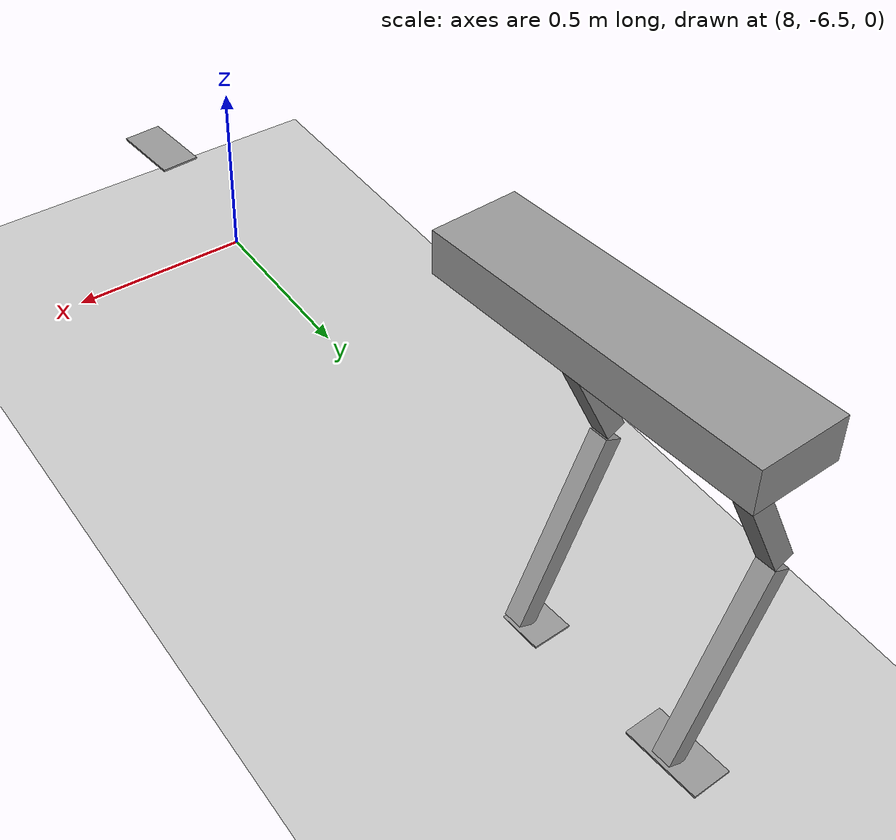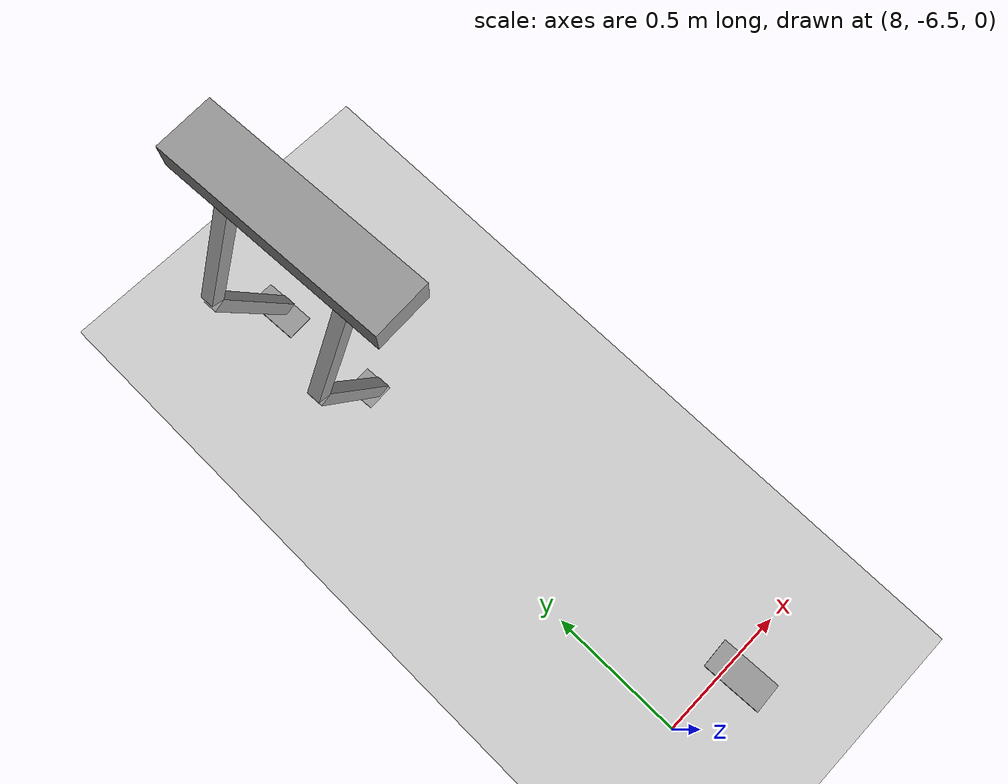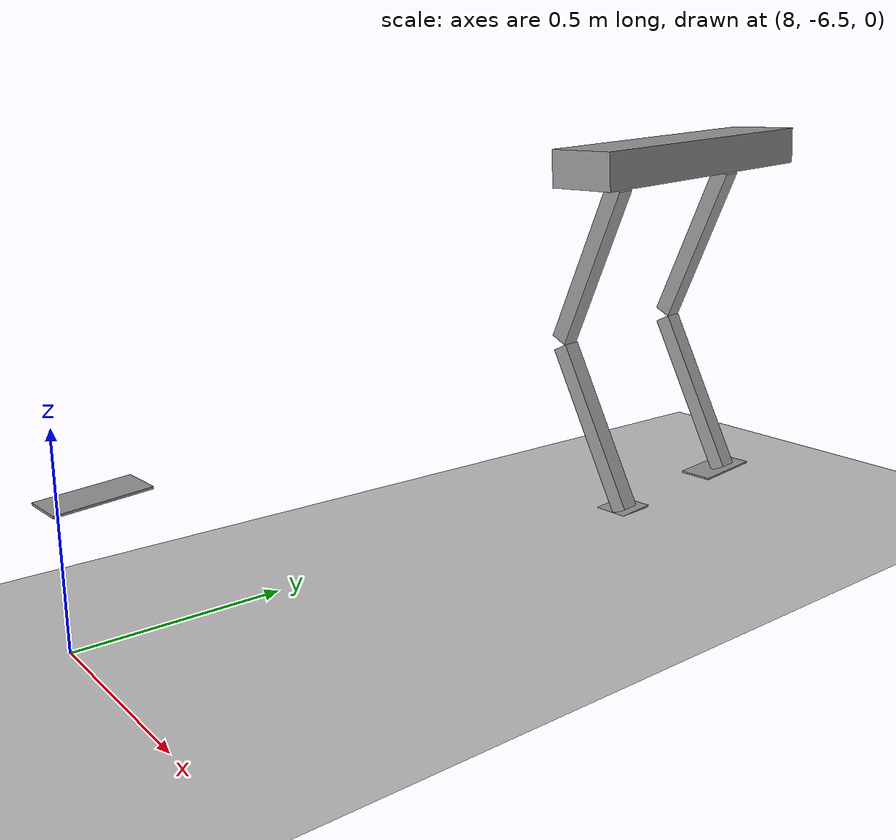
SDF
<sdf version="1.7">
 <world name="default">
  <model name="ground_plane">
   <static>1</static>
   <link name="link">
    <collision name="collision">
     <geometry><plane><normal>0 0 1</normal><size>100 100</size></plane></geometry>
     <surface>
      <contact><collide_bitmask>65535</collide_bitmask></contact>
      <friction><ode><mu>100</mu><mu2>50</mu2></ode></friction>
     </surface>
    </collision>
    <visual name="visual">
     <cast_shadows>0</cast_shadows>
     <geometry><plane><normal>0 0 1</normal><size>100 100</size></plane></geometry>
     <material>
      <script><uri>file://media/materials/scripts/gazebo.material</uri><name>Gazebo/Grey</name></script>
     </material>
    </visual>
   </link>
  </model>
  <model name="HumanoidRobot_clone_0">
   <link name="link_0">
    <inertial>
     <mass>1</mass>
     <inertia>
      <ixx>0.166667</ixx>
      <ixy>0</ixy>
      <ixz>0</ixz>
      <iyy>0.166667</iyy>
      <iyz>0</iyz>
      <izz>0.166667</izz>
     </inertia>
    </inertial>
    <pose>0.079366 0.216312 0.457777 0 -0 0</pose>
    <visual name="visual">
     <geometry><box><size>0.2 0.8 0.1</size></box></geometry>
     <material>
      <lighting>1</lighting>
      <script><uri>file://media/materials/scripts/gazebo.material</uri><name>Gazebo/Grey</name></script>
      <shader type="pixel"><normal_map>__default__</normal_map></shader>
      <ambient>0.3 0.3 0.3 1</ambient>
      <diffuse>0.7 0.7 0.7 1</diffuse>
      <specular>0.01 0.01 0.01 1</specular>
      <emissive>0 0 0 1</emissive>
     </material>
    </visual>
    <collision name="collision">
     <geometry><box><size>0.2 0.8 0.1</size></box></geometry>
     <surface>
      <friction>
       <ode><mu>1</mu><mu2>1</mu2><fdir1>0 0 0</fdir1><slip1>0</slip1><slip2>0</slip2></ode>
       <torsional>
        <coefficient>1</coefficient>
        <patch_radius>0</patch_radius>
        <surface_radius>0</surface_radius>
        <use_patch_radius>1</use_patch_radius>
        <ode><slip>0</slip></ode>
       </torsional>
      </friction>
      <bounce><restitution_coefficient>0</restitution_coefficient><threshold>1e+06</threshold></bounce>
      <contact>
       <collide_without_contact>0</collide_without_contact>
       <collide_without_contact_bitmask>1</collide_without_contact_bitmask>
       <collide_bitmask>1</collide_bitmask>
       <ode>
        <soft_cfm>0</soft_cfm>
        <soft_erp>0.2</soft_erp>
        <kp>1e+13</kp>
        <kd>1</kd>
        <max_vel>0.01</max_vel>
        <min_depth>0</min_depth>
       </ode>
       <bullet>
        <split_impulse>1</split_impulse>
        <split_impulse_penetration_threshold>-0.01</split_impulse_penetration_threshold>
        <soft_cfm>0</soft_cfm>
        <soft_erp>0.2</soft_erp>
        <kp>1e+13</kp>
        <kd>1</kd>
       </bullet>
      </contact>
     </surface>
    </collision>
   </link>
   <link name="link_1">
    <inertial>
     <mass>1</mass>
     <inertia>
      <ixx>0.166667</ixx>
      <ixy>0</ixy>
      <ixz>0</ixz>
      <iyy>0.166667</iyy>
      <iyz>0</iyz>
      <izz>0.166667</izz>
     </inertia>
    </inertial>
    <pose>0.035258 -0.030805 -0.033667 0 -0 0</pose>
    <visual name="visual">
     <pose>0 0 -0.5 0 -0 0</pose>
     <geometry><box><size>0.1 0.2 0.005</size></box></geometry>
     <material>
      <lighting>1</lighting>
      <script><uri>file://media/materials/scripts/gazebo.material</uri><name>Gazebo/Grey</name></script>
      <shader type="pixel"><normal_map>__default__</normal_map></shader>
      <ambient>0.3 0.3 0.3 1</ambient>
      <diffuse>0.7 0.7 0.7 1</diffuse>
      <specular>0.01 0.01 0.01 1</specular>
      <emissive>0 0 0 1</emissive>
     </material>
    </visual>
    <collision name="collision">
     <pose>0 0 -0.5 0 -0 0</pose>
     <geometry><box><size>0.1 0.2 0.005</size></box></geometry>
     <surface>
      <friction>
       <ode><mu>1</mu><mu2>1</mu2><fdir1>0 0 0</fdir1><slip1>0</slip1><slip2>0</slip2></ode>
       <torsional>
        <coefficient>1</coefficient>
        <patch_radius>0</patch_radius>
        <surface_radius>0</surface_radius>
        <use_patch_radius>1</use_patch_radius>
        <ode><slip>0</slip></ode>
       </torsional>
      </friction>
      <bounce><restitution_coefficient>0</restitution_coefficient><threshold>1e+06</threshold></bounce>
      <contact>
       <collide_without_contact>0</collide_without_contact>
       <collide_without_contact_bitmask>1</collide_without_contact_bitmask>
       <collide_bitmask>1</collide_bitmask>
       <ode>
        <soft_cfm>0</soft_cfm>
        <soft_erp>0.2</soft_erp>
        <kp>1e+13</kp>
        <kd>1</kd>
        <max_vel>0.01</max_vel>
        <min_depth>0</min_depth>
       </ode>
       <bullet>
        <split_impulse>1</split_impulse>
        <split_impulse_penetration_threshold>-0.01</split_impulse_penetration_threshold>
        <soft_cfm>0</soft_cfm>
        <soft_erp>0.2</soft_erp>
        <kp>1e+13</kp>
        <kd>1</kd>
       </bullet>
      </contact>
     </surface>
    </collision>
   </link>
   <link name="link_1_clone">
    <inertial>
     <mass>1</mass>
     <inertia>
      <ixx>0.166667</ixx>
      <ixy>0</ixy>
      <ixz>0</ixz>
      <iyy>0.166667</iyy>
      <iyz>0</iyz>
      <izz>0.166667</izz>
     </inertia>
    </inertial>
    <pose>0.038471 -1.52445 -0.033667 0 -0 0</pose>
    <visual name="visual">
     <geometry><box><size>0.1 0.2 0.005</size></box></geometry>
     <material>
      <lighting>1</lighting>
      <script><uri>file://media/materials/scripts/gazebo.material</uri><name>Gazebo/Grey</name></script>
      <shader type="pixel"><normal_map>__default__</normal_map></shader>
      <ambient>0.3 0.3 0.3 1</ambient>
      <diffuse>0.7 0.7 0.7 1</diffuse>
      <specular>0.01 0.01 0.01 1</specular>
      <emissive>0 0 0 1</emissive>
     </material>
    </visual>
    <collision name="collision">
     <geometry><box><size>0.1 0.2 0.005</size></box></geometry>
     <surface>
      <friction>
       <ode><mu>1</mu><mu2>1</mu2><fdir1>0 0 0</fdir1><slip1>0</slip1><slip2>0</slip2></ode>
       <torsional>
        <coefficient>1</coefficient>
        <patch_radius>0</patch_radius>
        <surface_radius>0</surface_radius>
        <use_patch_radius>1</use_patch_radius>
        <ode><slip>0</slip></ode>
       </torsional>
      </friction>
      <bounce><restitution_coefficient>0</restitution_coefficient><threshold>1e+06</threshold></bounce>
      <contact>
       <collide_without_contact>0</collide_without_contact>
       <collide_without_contact_bitmask>1</collide_without_contact_bitmask>
       <collide_bitmask>1</collide_bitmask>
       <ode>
        <soft_cfm>0</soft_cfm>
        <soft_erp>0.2</soft_erp>
        <kp>1e+13</kp>
        <kd>1</kd>
        <max_vel>0.01</max_vel>
        <min_depth>0</min_depth>
       </ode>
       <bullet>
        <split_impulse>1</split_impulse>
        <split_impulse_penetration_threshold>-0.01</split_impulse_penetration_threshold>
        <soft_cfm>0</soft_cfm>
        <soft_erp>0.2</soft_erp>
        <kp>1e+13</kp>
        <kd>1</kd>
       </bullet>
      </contact>
     </surface>
    </collision>
   </link>
   <link name="link_1_clone_0">
    <inertial>
     <mass>1</mass>
     <inertia>
      <ixx>0.166667</ixx>
      <ixy>0</ixy>
      <ixz>0</ixz>
      <iyy>0.166667</iyy>
      <iyz>0</iyz>
      <izz>0.166667</izz>
     </inertia>
    </inertial>
    <pose>0.035258 0.453517 -0.033667 0 -0 0</pose>
    <visual name="visual">
     <pose>0 0 -0.5 0 -0 0</pose>
     <geometry><box><size>0.1 0.2 0.005</size></box></geometry>
     <material>
      <lighting>1</lighting>
      <script><uri>file://media/materials/scripts/gazebo.material</uri><name>Gazebo/Grey</name></script>
      <shader type="pixel"><normal_map>__default__</normal_map></shader>
      <ambient>0.3 0.3 0.3 1</ambient>
      <diffuse>0.7 0.7 0.7 1</diffuse>
      <specular>0.01 0.01 0.01 1</specular>
      <emissive>0 0 0 1</emissive>
     </material>
    </visual>
    <collision name="collision">
     <pose>0 0 -0.5 0 -0 0</pose>
     <geometry><box><size>0.1 0.2 0.005</size></box></geometry>
     <surface>
      <friction>
       <ode><mu>1</mu><mu2>1</mu2><fdir1>0 0 0</fdir1><slip1>0</slip1><slip2>0</slip2></ode>
       <torsional>
        <coefficient>1</coefficient>
        <patch_radius>0</patch_radius>
        <surface_radius>0</surface_radius>
        <use_patch_radius>1</use_patch_radius>
        <ode><slip>0</slip></ode>
       </torsional>
      </friction>
      <bounce><restitution_coefficient>0</restitution_coefficient><threshold>1e+06</threshold></bounce>
      <contact>
       <collide_without_contact>0</collide_without_contact>
       <collide_without_contact_bitmask>1</collide_without_contact_bitmask>
       <collide_bitmask>1</collide_bitmask>
       <ode>
        <soft_cfm>0</soft_cfm>
        <soft_erp>0.2</soft_erp>
        <kp>1e+13</kp>
        <kd>1</kd>
        <max_vel>0.01</max_vel>
        <min_depth>0</min_depth>
       </ode>
       <bullet>
        <split_impulse>1</split_impulse>
        <split_impulse_penetration_threshold>-0.01</split_impulse_penetration_threshold>
        <soft_cfm>0</soft_cfm>
        <soft_erp>0.2</soft_erp>
        <kp>1e+13</kp>
        <kd>1</kd>
       </bullet>
      </contact>
     </surface>
    </collision>
   </link>
   <link name="link_2">
    <inertial>
     <mass>1</mass>
     <inertia>
      <ixx>0.166667</ixx>
      <ixy>0</ixy>
      <ixz>0</ixz>
      <iyy>0.166667</iyy>
      <iyz>0</iyz>
      <izz>0.166667</izz>
     </inertia>
    </inertial>
    <pose>-0.050369 -0.010805 0.171791 0 -0 0</pose>
    <visual name="visual">
     <pose>0 0 0 0 0.45 0</pose>
     <geometry><box><size>0.05 0.05 0.5</size></box></geometry>
     <material>
      <lighting>1</lighting>
      <script><uri>file://media/materials/scripts/gazebo.material</uri><name>Gazebo/Grey</name></script>
      <shader type="pixel"><normal_map>__default__</normal_map></shader>
      <ambient>0.3 0.3 0.3 1</ambient>
      <diffuse>0.7 0.7 0.7 1</diffuse>
      <specular>0.01 0.01 0.01 1</specular>
      <emissive>0 0 0 1</emissive>
     </material>
    </visual>
    <collision name="collision">
     <pose>0 0 0 0 0.45 0</pose>
     <geometry><box><size>0.05 0.05 0.5</size></box></geometry>
     <surface>
      <friction>
       <ode><mu>1</mu><mu2>1</mu2><fdir1>0 0 0</fdir1><slip1>0</slip1><slip2>0</slip2></ode>
       <torsional>
        <coefficient>1</coefficient>
        <patch_radius>0</patch_radius>
        <surface_radius>0</surface_radius>
        <use_patch_radius>1</use_patch_radius>
        <ode><slip>0</slip></ode>
       </torsional>
      </friction>
      <bounce><restitution_coefficient>0</restitution_coefficient><threshold>1e+06</threshold></bounce>
      <contact>
       <collide_without_contact>0</collide_without_contact>
       <collide_without_contact_bitmask>1</collide_without_contact_bitmask>
       <collide_bitmask>1</collide_bitmask>
       <ode>
        <soft_cfm>0</soft_cfm>
        <soft_erp>0.2</soft_erp>
        <kp>1e+13</kp>
        <kd>1</kd>
        <max_vel>0.01</max_vel>
        <min_depth>0</min_depth>
       </ode>
       <bullet>
        <split_impulse>1</split_impulse>
        <split_impulse_penetration_threshold>-0.01</split_impulse_penetration_threshold>
        <soft_cfm>0</soft_cfm>
        <soft_erp>0.2</soft_erp>
        <kp>1e+13</kp>
        <kd>1</kd>
       </bullet>
      </contact>
     </surface>
    </collision>
   </link>
   <link name="link_2_clone">
    <inertial>
     <mass>1</mass>
     <inertia>
      <ixx>0.166667</ixx>
      <ixy>0</ixy>
      <ixz>0</ixz>
      <iyy>0.166667</iyy>
      <iyz>0</iyz>
      <izz>0.166667</izz>
     </inertia>
    </inertial>
    <pose>-0.045995 0.453517 0.171791 0 -0 0</pose>
    <visual name="visual">
     <pose>0 0 0 0 0.45 0</pose>
     <geometry><box><size>0.05 0.05 0.5</size></box></geometry>
     <material>
      <lighting>1</lighting>
      <script><uri>file://media/materials/scripts/gazebo.material</uri><name>Gazebo/Grey</name></script>
      <shader type="pixel"><normal_map>__default__</normal_map></shader>
      <ambient>0.3 0.3 0.3 1</ambient>
      <diffuse>0.7 0.7 0.7 1</diffuse>
      <specular>0.01 0.01 0.01 1</specular>
      <emissive>0 0 0 1</emissive>
     </material>
    </visual>
    <collision name="collision">
     <pose>0 0 0 0 0.45 0</pose>
     <geometry><box><size>0.05 0.05 0.5</size></box></geometry>
     <surface>
      <friction>
       <ode><mu>1</mu><mu2>1</mu2><fdir1>0 0 0</fdir1><slip1>0</slip1><slip2>0</slip2></ode>
       <torsional>
        <coefficient>1</coefficient>
        <patch_radius>0</patch_radius>
        <surface_radius>0</surface_radius>
        <use_patch_radius>1</use_patch_radius>
        <ode><slip>0</slip></ode>
       </torsional>
      </friction>
      <bounce><restitution_coefficient>0</restitution_coefficient><threshold>1e+06</threshold></bounce>
      <contact>
       <collide_without_contact>0</collide_without_contact>
       <collide_without_contact_bitmask>1</collide_without_contact_bitmask>
       <collide_bitmask>1</collide_bitmask>
       <ode>
        <soft_cfm>0</soft_cfm>
        <soft_erp>0.2</soft_erp>
        <kp>1e+13</kp>
        <kd>1</kd>
        <max_vel>0.01</max_vel>
        <min_depth>0</min_depth>
       </ode>
       <bullet>
        <split_impulse>1</split_impulse>
        <split_impulse_penetration_threshold>-0.01</split_impulse_penetration_threshold>
        <soft_cfm>0</soft_cfm>
        <soft_erp>0.2</soft_erp>
        <kp>1e+13</kp>
        <kd>1</kd>
       </bullet>
      </contact>
     </surface>
    </collision>
   </link>
   <link name="link_2_clone_0">
    <inertial>
     <mass>1</mass>
     <inertia>
      <ixx>0.166667</ixx>
      <ixy>0</ixy>
      <ixz>0</ixz>
      <iyy>0.166667</iyy>
      <iyz>0</iyz>
      <izz>0.166667</izz>
     </inertia>
    </inertial>
    <pose>-0.045995 -0.010805 -0.350181 0 -0 0</pose>
    <visual name="visual">
     <pose>0 0 0.05 0 -0.45 0</pose>
     <geometry><box><size>0.05 0.05 0.5</size></box></geometry>
     <material>
      <lighting>1</lighting>
      <script><uri>file://media/materials/scripts/gazebo.material</uri><name>Gazebo/Grey</name></script>
      <shader type="pixel"><normal_map>__default__</normal_map></shader>
      <ambient>0.3 0.3 0.3 1</ambient>
      <diffuse>0.7 0.7 0.7 1</diffuse>
      <specular>0.01 0.01 0.01 1</specular>
      <emissive>0 0 0 1</emissive>
     </material>
    </visual>
    <collision name="collision">
     <pose>0 0 0.05 0 -0.45 0</pose>
     <geometry><box><size>0.05 0.05 0.5</size></box></geometry>
     <surface>
      <friction>
       <ode><mu>1</mu><mu2>1</mu2><fdir1>0 0 0</fdir1><slip1>0</slip1><slip2>0</slip2></ode>
       <torsional>
        <coefficient>1</coefficient>
        <patch_radius>0</patch_radius>
        <surface_radius>0</surface_radius>
        <use_patch_radius>1</use_patch_radius>
        <ode><slip>0</slip></ode>
       </torsional>
      </friction>
      <bounce><restitution_coefficient>0</restitution_coefficient><threshold>1e+06</threshold></bounce>
      <contact>
       <collide_without_contact>0</collide_without_contact>
       <collide_without_contact_bitmask>1</collide_without_contact_bitmask>
       <collide_bitmask>1</collide_bitmask>
       <ode>
        <soft_cfm>0</soft_cfm>
        <soft_erp>0.2</soft_erp>
        <kp>1e+13</kp>
        <kd>1</kd>
        <max_vel>0.01</max_vel>
        <min_depth>0</min_depth>
       </ode>
       <bullet>
        <split_impulse>1</split_impulse>
        <split_impulse_penetration_threshold>-0.01</split_impulse_penetration_threshold>
        <soft_cfm>0</soft_cfm>
        <soft_erp>0.2</soft_erp>
        <kp>1e+13</kp>
        <kd>1</kd>
       </bullet>
      </contact>
     </surface>
    </collision>
   </link>
   <link name="link_2_clone_0_clone">
    <inertial>
     <mass>1</mass>
     <inertia>
      <ixx>0.166667</ixx>
      <ixy>0</ixy>
      <ixz>0</ixz>
      <iyy>0.166667</iyy>
      <iyz>0</iyz>
      <izz>0.166667</izz>
     </inertia>
    </inertial>
    <pose>-0.045995 0.453517 -0.350181 0 -0 0</pose>
    <visual name="visual">
     <pose>0 0 0.05 0 -0.45 0</pose>
     <geometry><box><size>0.05 0.05 0.5</size></box></geometry>
     <material>
      <lighting>1</lighting>
      <script><uri>file://media/materials/scripts/gazebo.material</uri><name>Gazebo/Grey</name></script>
      <shader type="pixel"><normal_map>__default__</normal_map></shader>
      <ambient>0.3 0.3 0.3 1</ambient>
      <diffuse>0.7 0.7 0.7 1</diffuse>
      <specular>0.01 0.01 0.01 1</specular>
      <emissive>0 0 0 1</emissive>
     </material>
    </visual>
    <collision name="collision">
     <pose>0 0 0.05 0 -0.45 0</pose>
     <geometry><box><size>0.05 0.05 0.5</size></box></geometry>
     <surface>
      <friction>
       <ode><mu>1</mu><mu2>1</mu2><fdir1>0 0 0</fdir1><slip1>0</slip1><slip2>0</slip2></ode>
       <torsional>
        <coefficient>1</coefficient>
        <patch_radius>0</patch_radius>
        <surface_radius>0</surface_radius>
        <use_patch_radius>1</use_patch_radius>
        <ode><slip>0</slip></ode>
       </torsional>
      </friction>
      <bounce><restitution_coefficient>0</restitution_coefficient><threshold>1e+06</threshold></bounce>
      <contact>
       <collide_without_contact>0</collide_without_contact>
       <collide_without_contact_bitmask>1</collide_without_contact_bitmask>
       <collide_bitmask>1</collide_bitmask>
       <ode>
        <soft_cfm>0</soft_cfm>
        <soft_erp>0.2</soft_erp>
        <kp>1e+13</kp>
        <kd>1</kd>
        <max_vel>0.01</max_vel>
        <min_depth>0</min_depth>
       </ode>
       <bullet>
        <split_impulse>1</split_impulse>
        <split_impulse_penetration_threshold>-0.01</split_impulse_penetration_threshold>
        <soft_cfm>0</soft_cfm>
        <soft_erp>0.2</soft_erp>
        <kp>1e+13</kp>
        <kd>1</kd>
       </bullet>
      </contact>
     </surface>
    </collision>
   </link>
   <joint name="link_1_JOINT_13" type="screw">
    <parent>link_1</parent>
    <child>link_2_clone_0</child>
    <axis>
     <xyz>1 0 0</xyz>
     <limit>
      <lower>-1.79769e+308</lower>
      <upper>1.79769e+308</upper>
      <effort>-1</effort>
      <velocity>-1</velocity>
     </limit>
     <dynamics>
      <spring_reference>0</spring_reference>
      <spring_stiffness>0</spring_stiffness>
      <damping>0</damping>
     </dynamics>
    </axis>
    <physics>
     <ode><limit><cfm>0</cfm><erp>0.2</erp></limit><suspension><cfm>0</cfm><erp>0.2</erp></suspension></ode>
    </physics>
    <thread_pitch>1</thread_pitch>
   </joint>
   <joint name="link_1_JOINT_1" type="revolute">
    <parent>link_1</parent>
    <child>link_2_clone_0</child>
    <axis>
     <xyz>1 0 0</xyz>
     <limit>
      <lower>-1.79769e+308</lower>
      <upper>1.79769e+308</upper>
      <effort>-1</effort>
      <velocity>-1</velocity>
     </limit>
     <dynamics>
      <spring_reference>0</spring_reference>
      <spring_stiffness>0</spring_stiffness>
      <damping>0</damping>
     </dynamics>
    </axis>
    <physics>
     <ode><limit><cfm>0</cfm><erp>0.2</erp></limit><suspension><cfm>0</cfm><erp>0.2</erp></suspension></ode>
    </physics>
   </joint>
   <joint name="link_1_clone_0_JOINT_10" type="screw">
    <parent>link_1_clone_0</parent>
    <child>link_2_clone_0_clone</child>
    <axis>
     <xyz>1 0 0</xyz>
     <limit>
      <lower>-1.79769e+308</lower>
      <upper>1.79769e+308</upper>
      <effort>-1</effort>
      <velocity>-1</velocity>
     </limit>
     <dynamics>
      <spring_reference>0</spring_reference>
      <spring_stiffness>0</spring_stiffness>
      <damping>0</damping>
     </dynamics>
    </axis>
    <physics>
     <ode><limit><cfm>0</cfm><erp>0.2</erp></limit><suspension><cfm>0</cfm><erp>0.2</erp></suspension></ode>
    </physics>
    <thread_pitch>1</thread_pitch>
   </joint>
   <joint name="link_1_clone_0_JOINT_3" type="revolute">
    <parent>link_1_clone_0</parent>
    <child>link_2_clone_0_clone</child>
    <axis>
     <xyz>1 0 0</xyz>
     <limit>
      <lower>-1.79769e+308</lower>
      <upper>1.79769e+308</upper>
      <effort>-1</effort>
      <velocity>-1</velocity>
     </limit>
     <dynamics>
      <spring_reference>0</spring_reference>
      <spring_stiffness>0</spring_stiffness>
      <damping>0</damping>
     </dynamics>
    </axis>
    <physics>
     <ode><limit><cfm>0</cfm><erp>0.2</erp></limit><suspension><cfm>0</cfm><erp>0.2</erp></suspension></ode>
    </physics>
   </joint>
   <joint name="link_1_clone_0_JOINT_8" type="fixed">
    <parent>link_1_clone_0</parent>
    <child>link_2_clone_0_clone</child>
    <physics>
     <ode><limit><cfm>0</cfm><erp>0.2</erp></limit><suspension><cfm>0</cfm><erp>0.2</erp></suspension></ode>
    </physics>
   </joint>
   <joint name="link_2_JOINT_0" type="revolute">
    <parent>link_2</parent>
    <child>link_2_clone_0</child>
    <axis>
     <xyz>1 0 0</xyz>
     <limit>
      <lower>-1.79769e+308</lower>
      <upper>1.79769e+308</upper>
      <effort>-1</effort>
      <velocity>-1</velocity>
     </limit>
     <dynamics>
      <spring_reference>0</spring_reference>
      <spring_stiffness>0</spring_stiffness>
      <damping>0</damping>
     </dynamics>
    </axis>
    <physics>
     <ode><limit><cfm>0</cfm><erp>0.2</erp></limit><suspension><cfm>0</cfm><erp>0.2</erp></suspension></ode>
    </physics>
   </joint>
   <joint name="link_2_JOINT_14" type="revolute">
    <parent>link_2</parent>
    <child>link_2_clone_0</child>
    <axis>
     <xyz>1 0 0</xyz>
     <limit>
      <lower>-1.79769e+308</lower>
      <upper>1.79769e+308</upper>
      <effort>-1</effort>
      <velocity>-1</velocity>
     </limit>
     <dynamics>
      <spring_reference>0</spring_reference>
      <spring_stiffness>0</spring_stiffness>
      <damping>0</damping>
     </dynamics>
    </axis>
    <physics>
     <ode><limit><cfm>0</cfm><erp>0.2</erp></limit><suspension><cfm>0</cfm><erp>0.2</erp></suspension></ode>
    </physics>
   </joint>
   <joint name="link_2_JOINT_18" type="screw">
    <parent>link_2</parent>
    <child>link_0</child>
    <axis>
     <xyz>1 0 0</xyz>
     <limit>
      <lower>-1.79769e+308</lower>
      <upper>1.79769e+308</upper>
      <effort>-1</effort>
      <velocity>-1</velocity>
     </limit>
     <dynamics>
      <spring_reference>0</spring_reference>
      <spring_stiffness>0</spring_stiffness>
      <damping>0</damping>
     </dynamics>
    </axis>
    <physics>
     <ode><limit><cfm>0</cfm><erp>0.2</erp></limit><suspension><cfm>0</cfm><erp>0.2</erp></suspension></ode>
    </physics>
    <thread_pitch>1</thread_pitch>
   </joint>
   <joint name="link_2_clone_0_clone_JOINT_11" type="revolute">
    <parent>link_2_clone_0_clone</parent>
    <child>link_2_clone</child>
    <axis>
     <xyz>1 0 0</xyz>
     <limit>
      <lower>-1.79769e+308</lower>
      <upper>1.79769e+308</upper>
      <effort>-1</effort>
      <velocity>-1</velocity>
     </limit>
     <dynamics>
      <spring_reference>0</spring_reference>
      <spring_stiffness>0</spring_stiffness>
      <damping>0</damping>
     </dynamics>
    </axis>
    <physics>
     <ode><limit><cfm>0</cfm><erp>0.2</erp></limit><suspension><cfm>0</cfm><erp>0.2</erp></suspension></ode>
    </physics>
   </joint>
   <joint name="link_2_clone_0_clone_JOINT_4" type="revolute">
    <parent>link_2_clone_0_clone</parent>
    <child>link_2_clone</child>
    <axis>
     <xyz>1 0 0</xyz>
     <limit>
      <lower>-1.79769e+308</lower>
      <upper>1.79769e+308</upper>
      <effort>-1</effort>
      <velocity>-1</velocity>
     </limit>
     <dynamics>
      <spring_reference>0</spring_reference>
      <spring_stiffness>0</spring_stiffness>
      <damping>0</damping>
     </dynamics>
    </axis>
    <physics>
     <ode><limit><cfm>0</cfm><erp>0.2</erp></limit><suspension><cfm>0</cfm><erp>0.2</erp></suspension></ode>
    </physics>
   </joint>
   <joint name="link_2_clone_0_clone_JOINT_5" type="revolute">
    <parent>link_2_clone_0_clone</parent>
    <child>link_2_clone</child>
    <axis>
     <xyz>1 0 0</xyz>
     <limit>
      <lower>-1.79769e+308</lower>
      <upper>1.79769e+308</upper>
      <effort>-1</effort>
      <velocity>-1</velocity>
     </limit>
     <dynamics>
      <spring_reference>0</spring_reference>
      <spring_stiffness>0</spring_stiffness>
      <damping>0</damping>
     </dynamics>
    </axis>
    <physics>
     <ode><limit><cfm>0</cfm><erp>0.2</erp></limit><suspension><cfm>0</cfm><erp>0.2</erp></suspension></ode>
    </physics>
   </joint>
   <joint name="link_2_clone_0_clone_JOINT_6" type="revolute">
    <parent>link_2_clone_0_clone</parent>
    <child>link_2_clone</child>
    <axis>
     <xyz>1 0 0</xyz>
     <limit>
      <lower>-1.79769e+308</lower>
      <upper>1.79769e+308</upper>
      <effort>-1</effort>
      <velocity>-1</velocity>
     </limit>
     <dynamics>
      <spring_reference>0</spring_reference>
      <spring_stiffness>0</spring_stiffness>
      <damping>0</damping>
     </dynamics>
    </axis>
    <physics>
     <ode><limit><cfm>0</cfm><erp>0.2</erp></limit><suspension><cfm>0</cfm><erp>0.2</erp></suspension></ode>
    </physics>
   </joint>
   <joint name="link_2_clone_0_clone_JOINT_9" type="screw">
    <parent>link_2_clone_0_clone</parent>
    <child>link_2_clone</child>
    <axis>
     <xyz>1 0 0</xyz>
     <limit>
      <lower>-1.79769e+308</lower>
      <upper>1.79769e+308</upper>
      <effort>-1</effort>
      <velocity>-1</velocity>
     </limit>
     <dynamics>
      <spring_reference>0</spring_reference>
      <spring_stiffness>0</spring_stiffness>
      <damping>0</damping>
     </dynamics>
    </axis>
    <physics>
     <ode><limit><cfm>0</cfm><erp>0.2</erp></limit><suspension><cfm>0</cfm><erp>0.2</erp></suspension></ode>
    </physics>
    <thread_pitch>1</thread_pitch>
   </joint>
   <joint name="link_2_clone_JOINT_15" type="screw">
    <parent>link_2_clone</parent>
    <child>link_0</child>
    <axis>
     <xyz>1 0 0</xyz>
     <limit>
      <lower>-1.79769e+308</lower>
      <upper>1.79769e+308</upper>
      <effort>-1</effort>
      <velocity>-1</velocity>
     </limit>
     <dynamics>
      <spring_reference>0</spring_reference>
      <spring_stiffness>0</spring_stiffness>
      <damping>0</damping>
     </dynamics>
    </axis>
    <physics>
     <ode><limit><cfm>0</cfm><erp>0.2</erp></limit><suspension><cfm>0</cfm><erp>0.2</erp></suspension></ode>
    </physics>
    <thread_pitch>1</thread_pitch>
   </joint>
   <joint name="link_2_clone_JOINT_17" type="screw">
    <parent>link_2_clone</parent>
    <child>link_0</child>
    <axis>
     <xyz>1 0 0</xyz>
     <limit>
      <lower>-1.79769e+308</lower>
      <upper>1.79769e+308</upper>
      <effort>-1</effort>
      <velocity>-1</velocity>
     </limit>
     <dynamics>
      <spring_reference>0</spring_reference>
      <spring_stiffness>0</spring_stiffness>
      <damping>0</damping>
     </dynamics>
    </axis>
    <physics>
     <ode><limit><cfm>0</cfm><erp>0.2</erp></limit><suspension><cfm>0</cfm><erp>0.2</erp></suspension></ode>
    </physics>
    <thread_pitch>1</thread_pitch>
   </joint>
   <static>0</static>
   <pose>8.08286 -4.98095 0.530155 0.055233 -6e-06 0.057417</pose>
  </model>
 </world>
</sdf>
